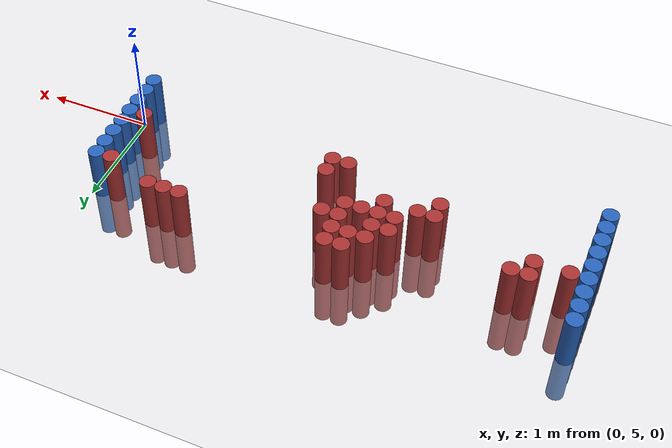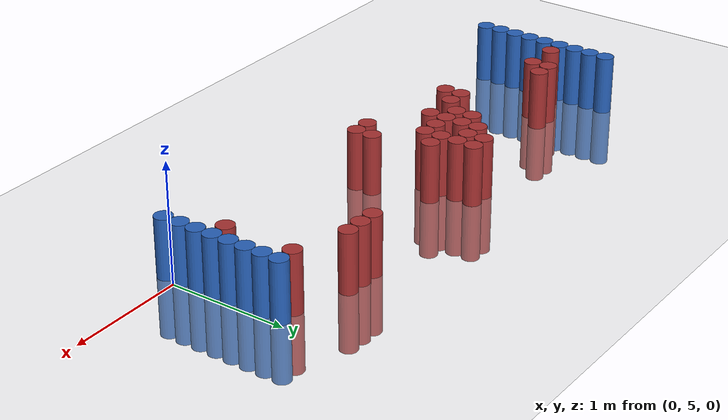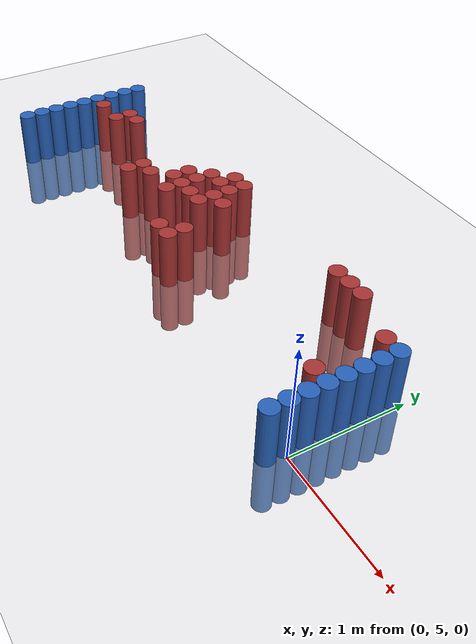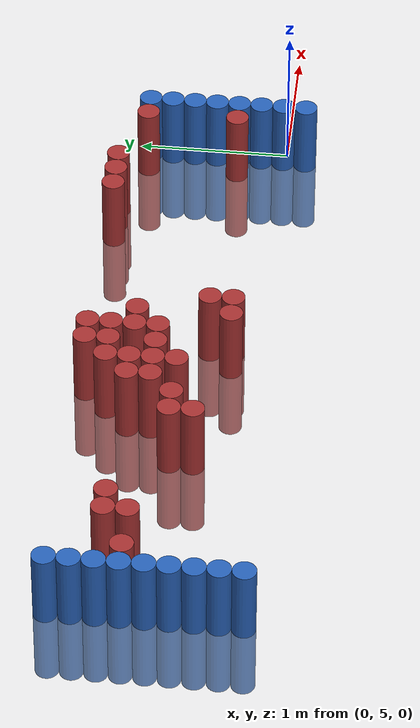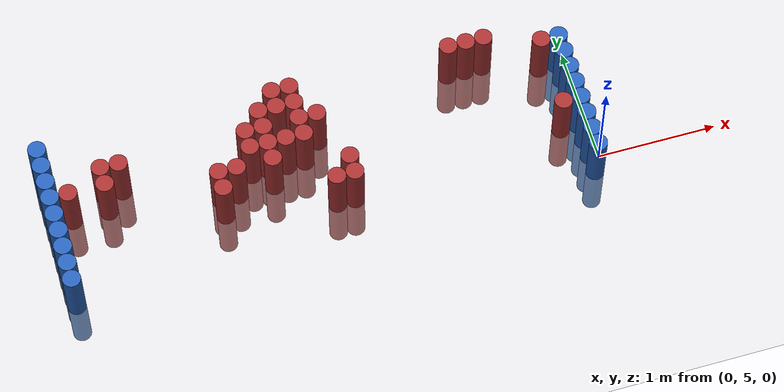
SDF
<sdf version="1.6">
 <world name="default">
  <model name="ground_plane">
   <static>1</static>
   <link name="link">
    <collision name="collision">
     <geometry><plane><normal>0 0 1</normal><size>100 100</size></plane></geometry>
     <surface><friction><ode><mu>100</mu><mu2>50</mu2></ode></friction></surface>
    </collision>
    <visual name="visual">
     <cast_shadows>0</cast_shadows>
     <geometry><plane><normal>0 0 1</normal><size>100 100</size></plane></geometry>
     <material>
      <script><uri>file://media/materials/scripts/gazebo.material</uri><name>Gazebo/Grey</name></script>
     </material>
    </visual>
   </link>
  </model>
  <model name="unit_cylinder_92">
   <static>1</static>
   <pose>-0.075000 4.875000 0.000000 0.000000 0.000000 0.000000</pose>
   <link name="link">
    <inertial>
     <mass>1</mass>
     <inertia><ixx>0.145833</ixx><ixy>0</ixy><ixz>0</ixz><iyy>0.145833</iyy><iyz>0</iyz><izz>0.125</izz></inertia>
    </inertial>
    <collision name="collision">
     <geometry><cylinder><radius>0.075000</radius><length>1</length></cylinder></geometry>
    </collision>
    <visual name="visual">
     <geometry><cylinder><radius>0.075000</radius><length>1</length></cylinder></geometry>
     <material>
      <ambient>0.152000 0.379000 0.720000 1</ambient>
      <diffuse>0.152000 0.379000 0.720000 1</diffuse>
     </material>
     <material>
      <script><name>Gazebo/Grey</name><uri>file://media/materials/scripts/gazebo.material</uri></script>
     </material>
    </visual>
   </link>
  </model>
  <model name="unit_cylinder_93">
   <static>1</static>
   <pose>-4.425000 4.875000 0.000000 0.000000 0.000000 0.000000</pose>
   <link name="link">
    <inertial>
     <mass>1</mass>
     <inertia><ixx>0.145833</ixx><ixy>0</ixy><ixz>0</ixz><iyy>0.145833</iyy><iyz>0</iyz><izz>0.125</izz></inertia>
    </inertial>
    <collision name="collision">
     <geometry><cylinder><radius>0.075000</radius><length>1</length></cylinder></geometry>
    </collision>
    <visual name="visual">
     <geometry><cylinder><radius>0.075000</radius><length>1</length></cylinder></geometry>
     <material>
      <ambient>0.152000 0.379000 0.720000 1</ambient>
      <diffuse>0.152000 0.379000 0.720000 1</diffuse>
     </material>
     <material>
      <script><name>Gazebo/Grey</name><uri>file://media/materials/scripts/gazebo.material</uri></script>
     </material>
    </visual>
   </link>
  </model>
  <model name="unit_cylinder_94">
   <static>1</static>
   <pose>-0.075000 5.025000 0.000000 0.000000 0.000000 0.000000</pose>
   <link name="link">
    <inertial>
     <mass>1</mass>
     <inertia><ixx>0.145833</ixx><ixy>0</ixy><ixz>0</ixz><iyy>0.145833</iyy><iyz>0</iyz><izz>0.125</izz></inertia>
    </inertial>
    <collision name="collision">
     <geometry><cylinder><radius>0.075000</radius><length>1</length></cylinder></geometry>
    </collision>
    <visual name="visual">
     <geometry><cylinder><radius>0.075000</radius><length>1</length></cylinder></geometry>
     <material>
      <ambient>0.152000 0.379000 0.720000 1</ambient>
      <diffuse>0.152000 0.379000 0.720000 1</diffuse>
     </material>
     <material>
      <script><name>Gazebo/Grey</name><uri>file://media/materials/scripts/gazebo.material</uri></script>
     </material>
    </visual>
   </link>
  </model>
  <model name="unit_cylinder_95">
   <static>1</static>
   <pose>-4.425000 5.025000 0.000000 0.000000 0.000000 0.000000</pose>
   <link name="link">
    <inertial>
     <mass>1</mass>
     <inertia><ixx>0.145833</ixx><ixy>0</ixy><ixz>0</ixz><iyy>0.145833</iyy><iyz>0</iyz><izz>0.125</izz></inertia>
    </inertial>
    <collision name="collision">
     <geometry><cylinder><radius>0.075000</radius><length>1</length></cylinder></geometry>
    </collision>
    <visual name="visual">
     <geometry><cylinder><radius>0.075000</radius><length>1</length></cylinder></geometry>
     <material>
      <ambient>0.152000 0.379000 0.720000 1</ambient>
      <diffuse>0.152000 0.379000 0.720000 1</diffuse>
     </material>
     <material>
      <script><name>Gazebo/Grey</name><uri>file://media/materials/scripts/gazebo.material</uri></script>
     </material>
    </visual>
   </link>
  </model>
  <model name="unit_cylinder_96">
   <static>1</static>
   <pose>-4.425000 5.175000 0.000000 0.000000 0.000000 0.000000</pose>
   <link name="link">
    <inertial>
     <mass>1</mass>
     <inertia><ixx>0.145833</ixx><ixy>0</ixy><ixz>0</ixz><iyy>0.145833</iyy><iyz>0</iyz><izz>0.125</izz></inertia>
    </inertial>
    <collision name="collision">
     <geometry><cylinder><radius>0.075000</radius><length>1</length></cylinder></geometry>
    </collision>
    <visual name="visual">
     <geometry><cylinder><radius>0.075000</radius><length>1</length></cylinder></geometry>
     <material>
      <ambient>0.152000 0.379000 0.720000 1</ambient>
      <diffuse>0.152000 0.379000 0.720000 1</diffuse>
     </material>
     <material>
      <script><name>Gazebo/Grey</name><uri>file://media/materials/scripts/gazebo.material</uri></script>
     </material>
    </visual>
   </link>
  </model>
  <model name="unit_cylinder_97">
   <static>1</static>
   <pose>-4.425000 5.325000 0.000000 0.000000 0.000000 0.000000</pose>
   <link name="link">
    <inertial>
     <mass>1</mass>
     <inertia><ixx>0.145833</ixx><ixy>0</ixy><ixz>0</ixz><iyy>0.145833</iyy><iyz>0</iyz><izz>0.125</izz></inertia>
    </inertial>
    <collision name="collision">
     <geometry><cylinder><radius>0.075000</radius><length>1</length></cylinder></geometry>
    </collision>
    <visual name="visual">
     <geometry><cylinder><radius>0.075000</radius><length>1</length></cylinder></geometry>
     <material>
      <ambient>0.152000 0.379000 0.720000 1</ambient>
      <diffuse>0.152000 0.379000 0.720000 1</diffuse>
     </material>
     <material>
      <script><name>Gazebo/Grey</name><uri>file://media/materials/scripts/gazebo.material</uri></script>
     </material>
    </visual>
   </link>
  </model>
  <model name="unit_cylinder_98">
   <static>1</static>
   <pose>-4.425000 5.475000 0.000000 0.000000 0.000000 0.000000</pose>
   <link name="link">
    <inertial>
     <mass>1</mass>
     <inertia><ixx>0.145833</ixx><ixy>0</ixy><ixz>0</ixz><iyy>0.145833</iyy><iyz>0</iyz><izz>0.125</izz></inertia>
    </inertial>
    <collision name="collision">
     <geometry><cylinder><radius>0.075000</radius><length>1</length></cylinder></geometry>
    </collision>
    <visual name="visual">
     <geometry><cylinder><radius>0.075000</radius><length>1</length></cylinder></geometry>
     <material>
      <ambient>0.152000 0.379000 0.720000 1</ambient>
      <diffuse>0.152000 0.379000 0.720000 1</diffuse>
     </material>
     <material>
      <script><name>Gazebo/Grey</name><uri>file://media/materials/scripts/gazebo.material</uri></script>
     </material>
    </visual>
   </link>
  </model>
  <model name="unit_cylinder_99">
   <static>1</static>
   <pose>-4.425000 5.625000 0.000000 0.000000 0.000000 0.000000</pose>
   <link name="link">
    <inertial>
     <mass>1</mass>
     <inertia><ixx>0.145833</ixx><ixy>0</ixy><ixz>0</ixz><iyy>0.145833</iyy><iyz>0</iyz><izz>0.125</izz></inertia>
    </inertial>
    <collision name="collision">
     <geometry><cylinder><radius>0.075000</radius><length>1</length></cylinder></geometry>
    </collision>
    <visual name="visual">
     <geometry><cylinder><radius>0.075000</radius><length>1</length></cylinder></geometry>
     <material>
      <ambient>0.152000 0.379000 0.720000 1</ambient>
      <diffuse>0.152000 0.379000 0.720000 1</diffuse>
     </material>
     <material>
      <script><name>Gazebo/Grey</name><uri>file://media/materials/scripts/gazebo.material</uri></script>
     </material>
    </visual>
   </link>
  </model>
  <model name="unit_cylinder_100">
   <static>1</static>
   <pose>-4.425000 5.775000 0.000000 0.000000 0.000000 0.000000</pose>
   <link name="link">
    <inertial>
     <mass>1</mass>
     <inertia><ixx>0.145833</ixx><ixy>0</ixy><ixz>0</ixz><iyy>0.145833</iyy><iyz>0</iyz><izz>0.125</izz></inertia>
    </inertial>
    <collision name="collision">
     <geometry><cylinder><radius>0.075000</radius><length>1</length></cylinder></geometry>
    </collision>
    <visual name="visual">
     <geometry><cylinder><radius>0.075000</radius><length>1</length></cylinder></geometry>
     <material>
      <ambient>0.152000 0.379000 0.720000 1</ambient>
      <diffuse>0.152000 0.379000 0.720000 1</diffuse>
     </material>
     <material>
      <script><name>Gazebo/Grey</name><uri>file://media/materials/scripts/gazebo.material</uri></script>
     </material>
    </visual>
   </link>
  </model>
  <model name="unit_cylinder_101">
   <static>1</static>
   <pose>-4.425000 5.925000 0.000000 0.000000 0.000000 0.000000</pose>
   <link name="link">
    <inertial>
     <mass>1</mass>
     <inertia><ixx>0.145833</ixx><ixy>0</ixy><ixz>0</ixz><iyy>0.145833</iyy><iyz>0</iyz><izz>0.125</izz></inertia>
    </inertial>
    <collision name="collision">
     <geometry><cylinder><radius>0.075000</radius><length>1</length></cylinder></geometry>
    </collision>
    <visual name="visual">
     <geometry><cylinder><radius>0.075000</radius><length>1</length></cylinder></geometry>
     <material>
      <ambient>0.152000 0.379000 0.720000 1</ambient>
      <diffuse>0.152000 0.379000 0.720000 1</diffuse>
     </material>
     <material>
      <script><name>Gazebo/Grey</name><uri>file://media/materials/scripts/gazebo.material</uri></script>
     </material>
    </visual>
   </link>
  </model>
  <model name="unit_cylinder_102">
   <static>1</static>
   <pose>-4.425000 6.075000 0.000000 0.000000 0.000000 0.000000</pose>
   <link name="link">
    <inertial>
     <mass>1</mass>
     <inertia><ixx>0.145833</ixx><ixy>0</ixy><ixz>0</ixz><iyy>0.145833</iyy><iyz>0</iyz><izz>0.125</izz></inertia>
    </inertial>
    <collision name="collision">
     <geometry><cylinder><radius>0.075000</radius><length>1</length></cylinder></geometry>
    </collision>
    <visual name="visual">
     <geometry><cylinder><radius>0.075000</radius><length>1</length></cylinder></geometry>
     <material>
      <ambient>0.152000 0.379000 0.720000 1</ambient>
      <diffuse>0.152000 0.379000 0.720000 1</diffuse>
     </material>
     <material>
      <script><name>Gazebo/Grey</name><uri>file://media/materials/scripts/gazebo.material</uri></script>
     </material>
    </visual>
   </link>
  </model>
  <model name="unit_cylinder_126">
   <static>1</static>
   <pose>-4.275000 5.625000 0.000000 0.000000 0.000000 0.000000</pose>
   <link name="link">
    <inertial>
     <mass>1</mass>
     <inertia><ixx>0.145833</ixx><ixy>0</ixy><ixz>0</ixz><iyy>0.145833</iyy><iyz>0</iyz><izz>0.125</izz></inertia>
    </inertial>
    <collision name="collision">
     <geometry><cylinder><radius>0.075000</radius><length>1</length></cylinder></geometry>
    </collision>
    <visual name="visual">
     <geometry><cylinder><radius>0.075000</radius><length>1</length></cylinder></geometry>
     <material>
      <ambient>0.648000 0.192000 0.192000 1</ambient>
      <diffuse>0.648000 0.192000 0.192000 1</diffuse>
     </material>
     <material>
      <script><name>Gazebo/Grey</name><uri>file://media/materials/scripts/gazebo.material</uri></script>
     </material>
    </visual>
   </link>
  </model>
  <model name="unit_cylinder_144">
   <static>1</static>
   <pose>-3.975000 5.625000 0.000000 0.000000 0.000000 0.000000</pose>
   <link name="link">
    <inertial>
     <mass>1</mass>
     <inertia><ixx>0.145833</ixx><ixy>0</ixy><ixz>0</ixz><iyy>0.145833</iyy><iyz>0</iyz><izz>0.125</izz></inertia>
    </inertial>
    <collision name="collision">
     <geometry><cylinder><radius>0.075000</radius><length>1</length></cylinder></geometry>
    </collision>
    <visual name="visual">
     <geometry><cylinder><radius>0.075000</radius><length>1</length></cylinder></geometry>
     <material>
      <ambient>0.648000 0.192000 0.192000 1</ambient>
      <diffuse>0.648000 0.192000 0.192000 1</diffuse>
     </material>
     <material>
      <script><name>Gazebo/Grey</name><uri>file://media/materials/scripts/gazebo.material</uri></script>
     </material>
    </visual>
   </link>
  </model>
  <model name="unit_cylinder_145">
   <static>1</static>
   <pose>-3.975000 5.775000 0.000000 0.000000 0.000000 0.000000</pose>
   <link name="link">
    <inertial>
     <mass>1</mass>
     <inertia><ixx>0.145833</ixx><ixy>0</ixy><ixz>0</ixz><iyy>0.145833</iyy><iyz>0</iyz><izz>0.125</izz></inertia>
    </inertial>
    <collision name="collision">
     <geometry><cylinder><radius>0.075000</radius><length>1</length></cylinder></geometry>
    </collision>
    <visual name="visual">
     <geometry><cylinder><radius>0.075000</radius><length>1</length></cylinder></geometry>
     <material>
      <ambient>0.648000 0.192000 0.192000 1</ambient>
      <diffuse>0.648000 0.192000 0.192000 1</diffuse>
     </material>
     <material>
      <script><name>Gazebo/Grey</name><uri>file://media/materials/scripts/gazebo.material</uri></script>
     </material>
    </visual>
   </link>
  </model>
  <model name="unit_cylinder_150">
   <static>1</static>
   <pose>-3.825000 5.775000 0.000000 0.000000 0.000000 0.000000</pose>
   <link name="link">
    <inertial>
     <mass>1</mass>
     <inertia><ixx>0.145833</ixx><ixy>0</ixy><ixz>0</ixz><iyy>0.145833</iyy><iyz>0</iyz><izz>0.125</izz></inertia>
    </inertial>
    <collision name="collision">
     <geometry><cylinder><radius>0.075000</radius><length>1</length></cylinder></geometry>
    </collision>
    <visual name="visual">
     <geometry><cylinder><radius>0.075000</radius><length>1</length></cylinder></geometry>
     <material>
      <ambient>0.648000 0.192000 0.192000 1</ambient>
      <diffuse>0.648000 0.192000 0.192000 1</diffuse>
     </material>
     <material>
      <script><name>Gazebo/Grey</name><uri>file://media/materials/scripts/gazebo.material</uri></script>
     </material>
    </visual>
   </link>
  </model>
  <model name="unit_cylinder_159">
   <static>1</static>
   <pose>-3.075000 5.325000 0.000000 0.000000 0.000000 0.000000</pose>
   <link name="link">
    <inertial>
     <mass>1</mass>
     <inertia><ixx>0.145833</ixx><ixy>0</ixy><ixz>0</ixz><iyy>0.145833</iyy><iyz>0</iyz><izz>0.125</izz></inertia>
    </inertial>
    <collision name="collision">
     <geometry><cylinder><radius>0.075000</radius><length>1</length></cylinder></geometry>
    </collision>
    <visual name="visual">
     <geometry><cylinder><radius>0.075000</radius><length>1</length></cylinder></geometry>
     <material>
      <ambient>0.648000 0.192000 0.192000 1</ambient>
      <diffuse>0.648000 0.192000 0.192000 1</diffuse>
     </material>
     <material>
      <script><name>Gazebo/Grey</name><uri>file://media/materials/scripts/gazebo.material</uri></script>
     </material>
    </visual>
   </link>
  </model>
  <model name="unit_cylinder_160">
   <static>1</static>
   <pose>-3.075000 5.475000 0.000000 0.000000 0.000000 0.000000</pose>
   <link name="link">
    <inertial>
     <mass>1</mass>
     <inertia><ixx>0.145833</ixx><ixy>0</ixy><ixz>0</ixz><iyy>0.145833</iyy><iyz>0</iyz><izz>0.125</izz></inertia>
    </inertial>
    <collision name="collision">
     <geometry><cylinder><radius>0.075000</radius><length>1</length></cylinder></geometry>
    </collision>
    <visual name="visual">
     <geometry><cylinder><radius>0.075000</radius><length>1</length></cylinder></geometry>
     <material>
      <ambient>0.648000 0.192000 0.192000 1</ambient>
      <diffuse>0.648000 0.192000 0.192000 1</diffuse>
     </material>
     <material>
      <script><name>Gazebo/Grey</name><uri>file://media/materials/scripts/gazebo.material</uri></script>
     </material>
    </visual>
   </link>
  </model>
  <model name="unit_cylinder_161">
   <static>1</static>
   <pose>-2.925000 5.475000 0.000000 0.000000 0.000000 0.000000</pose>
   <link name="link">
    <inertial>
     <mass>1</mass>
     <inertia><ixx>0.145833</ixx><ixy>0</ixy><ixz>0</ixz><iyy>0.145833</iyy><iyz>0</iyz><izz>0.125</izz></inertia>
    </inertial>
    <collision name="collision">
     <geometry><cylinder><radius>0.075000</radius><length>1</length></cylinder></geometry>
    </collision>
    <visual name="visual">
     <geometry><cylinder><radius>0.075000</radius><length>1</length></cylinder></geometry>
     <material>
      <ambient>0.648000 0.192000 0.192000 1</ambient>
      <diffuse>0.648000 0.192000 0.192000 1</diffuse>
     </material>
     <material>
      <script><name>Gazebo/Grey</name><uri>file://media/materials/scripts/gazebo.material</uri></script>
     </material>
    </visual>
   </link>
  </model>
  <model name="unit_cylinder_164">
   <static>1</static>
   <pose>-2.775000 5.625000 0.000000 0.000000 0.000000 0.000000</pose>
   <link name="link">
    <inertial>
     <mass>1</mass>
     <inertia><ixx>0.145833</ixx><ixy>0</ixy><ixz>0</ixz><iyy>0.145833</iyy><iyz>0</iyz><izz>0.125</izz></inertia>
    </inertial>
    <collision name="collision">
     <geometry><cylinder><radius>0.075000</radius><length>1</length></cylinder></geometry>
    </collision>
    <visual name="visual">
     <geometry><cylinder><radius>0.075000</radius><length>1</length></cylinder></geometry>
     <material>
      <ambient>0.648000 0.192000 0.192000 1</ambient>
      <diffuse>0.648000 0.192000 0.192000 1</diffuse>
     </material>
     <material>
      <script><name>Gazebo/Grey</name><uri>file://media/materials/scripts/gazebo.material</uri></script>
     </material>
    </visual>
   </link>
  </model>
  <model name="unit_cylinder_165">
   <static>1</static>
   <pose>-2.775000 5.775000 0.000000 0.000000 0.000000 0.000000</pose>
   <link name="link">
    <inertial>
     <mass>1</mass>
     <inertia><ixx>0.145833</ixx><ixy>0</ixy><ixz>0</ixz><iyy>0.145833</iyy><iyz>0</iyz><izz>0.125</izz></inertia>
    </inertial>
    <collision name="collision">
     <geometry><cylinder><radius>0.075000</radius><length>1</length></cylinder></geometry>
    </collision>
    <visual name="visual">
     <geometry><cylinder><radius>0.075000</radius><length>1</length></cylinder></geometry>
     <material>
      <ambient>0.648000 0.192000 0.192000 1</ambient>
      <diffuse>0.648000 0.192000 0.192000 1</diffuse>
     </material>
     <material>
      <script><name>Gazebo/Grey</name><uri>file://media/materials/scripts/gazebo.material</uri></script>
     </material>
    </visual>
   </link>
  </model>
  <model name="unit_cylinder_168">
   <static>1</static>
   <pose>-2.625000 5.475000 0.000000 0.000000 0.000000 0.000000</pose>
   <link name="link">
    <inertial>
     <mass>1</mass>
     <inertia><ixx>0.145833</ixx><ixy>0</ixy><ixz>0</ixz><iyy>0.145833</iyy><iyz>0</iyz><izz>0.125</izz></inertia>
    </inertial>
    <collision name="collision">
     <geometry><cylinder><radius>0.075000</radius><length>1</length></cylinder></geometry>
    </collision>
    <visual name="visual">
     <geometry><cylinder><radius>0.075000</radius><length>1</length></cylinder></geometry>
     <material>
      <ambient>0.648000 0.192000 0.192000 1</ambient>
      <diffuse>0.648000 0.192000 0.192000 1</diffuse>
     </material>
     <material>
      <script><name>Gazebo/Grey</name><uri>file://media/materials/scripts/gazebo.material</uri></script>
     </material>
    </visual>
   </link>
  </model>
  <model name="unit_cylinder_169">
   <static>1</static>
   <pose>-2.625000 5.625000 0.000000 0.000000 0.000000 0.000000</pose>
   <link name="link">
    <inertial>
     <mass>1</mass>
     <inertia><ixx>0.145833</ixx><ixy>0</ixy><ixz>0</ixz><iyy>0.145833</iyy><iyz>0</iyz><izz>0.125</izz></inertia>
    </inertial>
    <collision name="collision">
     <geometry><cylinder><radius>0.075000</radius><length>1</length></cylinder></geometry>
    </collision>
    <visual name="visual">
     <geometry><cylinder><radius>0.075000</radius><length>1</length></cylinder></geometry>
     <material>
      <ambient>0.648000 0.192000 0.192000 1</ambient>
      <diffuse>0.648000 0.192000 0.192000 1</diffuse>
     </material>
     <material>
      <script><name>Gazebo/Grey</name><uri>file://media/materials/scripts/gazebo.material</uri></script>
     </material>
    </visual>
   </link>
  </model>
  <model name="unit_cylinder_170">
   <static>1</static>
   <pose>-2.625000 5.775000 0.000000 0.000000 0.000000 0.000000</pose>
   <link name="link">
    <inertial>
     <mass>1</mass>
     <inertia><ixx>0.145833</ixx><ixy>0</ixy><ixz>0</ixz><iyy>0.145833</iyy><iyz>0</iyz><izz>0.125</izz></inertia>
    </inertial>
    <collision name="collision">
     <geometry><cylinder><radius>0.075000</radius><length>1</length></cylinder></geometry>
    </collision>
    <visual name="visual">
     <geometry><cylinder><radius>0.075000</radius><length>1</length></cylinder></geometry>
     <material>
      <ambient>0.648000 0.192000 0.192000 1</ambient>
      <diffuse>0.648000 0.192000 0.192000 1</diffuse>
     </material>
     <material>
      <script><name>Gazebo/Grey</name><uri>file://media/materials/scripts/gazebo.material</uri></script>
     </material>
    </visual>
   </link>
  </model>
  <model name="unit_cylinder_171">
   <static>1</static>
   <pose>-2.625000 5.925000 0.000000 0.000000 0.000000 0.000000</pose>
   <link name="link">
    <inertial>
     <mass>1</mass>
     <inertia><ixx>0.145833</ixx><ixy>0</ixy><ixz>0</ixz><iyy>0.145833</iyy><iyz>0</iyz><izz>0.125</izz></inertia>
    </inertial>
    <collision name="collision">
     <geometry><cylinder><radius>0.075000</radius><length>1</length></cylinder></geometry>
    </collision>
    <visual name="visual">
     <geometry><cylinder><radius>0.075000</radius><length>1</length></cylinder></geometry>
     <material>
      <ambient>0.648000 0.192000 0.192000 1</ambient>
      <diffuse>0.648000 0.192000 0.192000 1</diffuse>
     </material>
     <material>
      <script><name>Gazebo/Grey</name><uri>file://media/materials/scripts/gazebo.material</uri></script>
     </material>
    </visual>
   </link>
  </model>
  <model name="unit_cylinder_173">
   <static>1</static>
   <pose>-2.475000 5.625000 0.000000 0.000000 0.000000 0.000000</pose>
   <link name="link">
    <inertial>
     <mass>1</mass>
     <inertia><ixx>0.145833</ixx><ixy>0</ixy><ixz>0</ixz><iyy>0.145833</iyy><iyz>0</iyz><izz>0.125</izz></inertia>
    </inertial>
    <collision name="collision">
     <geometry><cylinder><radius>0.075000</radius><length>1</length></cylinder></geometry>
    </collision>
    <visual name="visual">
     <geometry><cylinder><radius>0.075000</radius><length>1</length></cylinder></geometry>
     <material>
      <ambient>0.648000 0.192000 0.192000 1</ambient>
      <diffuse>0.648000 0.192000 0.192000 1</diffuse>
     </material>
     <material>
      <script><name>Gazebo/Grey</name><uri>file://media/materials/scripts/gazebo.material</uri></script>
     </material>
    </visual>
   </link>
  </model>
  <model name="unit_cylinder_174">
   <static>1</static>
   <pose>-2.475000 5.925000 0.000000 0.000000 0.000000 0.000000</pose>
   <link name="link">
    <inertial>
     <mass>1</mass>
     <inertia><ixx>0.145833</ixx><ixy>0</ixy><ixz>0</ixz><iyy>0.145833</iyy><iyz>0</iyz><izz>0.125</izz></inertia>
    </inertial>
    <collision name="collision">
     <geometry><cylinder><radius>0.075000</radius><length>1</length></cylinder></geometry>
    </collision>
    <visual name="visual">
     <geometry><cylinder><radius>0.075000</radius><length>1</length></cylinder></geometry>
     <material>
      <ambient>0.648000 0.192000 0.192000 1</ambient>
      <diffuse>0.648000 0.192000 0.192000 1</diffuse>
     </material>
     <material>
      <script><name>Gazebo/Grey</name><uri>file://media/materials/scripts/gazebo.material</uri></script>
     </material>
    </visual>
   </link>
  </model>
  <model name="unit_cylinder_175">
   <static>1</static>
   <pose>-2.475000 6.075000 0.000000 0.000000 0.000000 0.000000</pose>
   <link name="link">
    <inertial>
     <mass>1</mass>
     <inertia><ixx>0.145833</ixx><ixy>0</ixy><ixz>0</ixz><iyy>0.145833</iyy><iyz>0</iyz><izz>0.125</izz></inertia>
    </inertial>
    <collision name="collision">
     <geometry><cylinder><radius>0.075000</radius><length>1</length></cylinder></geometry>
    </collision>
    <visual name="visual">
     <geometry><cylinder><radius>0.075000</radius><length>1</length></cylinder></geometry>
     <material>
      <ambient>0.648000 0.192000 0.192000 1</ambient>
      <diffuse>0.648000 0.192000 0.192000 1</diffuse>
     </material>
     <material>
      <script><name>Gazebo/Grey</name><uri>file://media/materials/scripts/gazebo.material</uri></script>
     </material>
    </visual>
   </link>
  </model>
  <model name="unit_cylinder_180">
   <static>1</static>
   <pose>-2.325000 5.625000 0.000000 0.000000 0.000000 0.000000</pose>
   <link name="link">
    <inertial>
     <mass>1</mass>
     <inertia><ixx>0.145833</ixx><ixy>0</ixy><ixz>0</ixz><iyy>0.145833</iyy><iyz>0</iyz><izz>0.125</izz></inertia>
    </inertial>
    <collision name="collision">
     <geometry><cylinder><radius>0.075000</radius><length>1</length></cylinder></geometry>
    </collision>
    <visual name="visual">
     <geometry><cylinder><radius>0.075000</radius><length>1</length></cylinder></geometry>
     <material>
      <ambient>0.648000 0.192000 0.192000 1</ambient>
      <diffuse>0.648000 0.192000 0.192000 1</diffuse>
     </material>
     <material>
      <script><name>Gazebo/Grey</name><uri>file://media/materials/scripts/gazebo.material</uri></script>
     </material>
    </visual>
   </link>
  </model>
  <model name="unit_cylinder_181">
   <static>1</static>
   <pose>-2.325000 5.775000 0.000000 0.000000 0.000000 0.000000</pose>
   <link name="link">
    <inertial>
     <mass>1</mass>
     <inertia><ixx>0.145833</ixx><ixy>0</ixy><ixz>0</ixz><iyy>0.145833</iyy><iyz>0</iyz><izz>0.125</izz></inertia>
    </inertial>
    <collision name="collision">
     <geometry><cylinder><radius>0.075000</radius><length>1</length></cylinder></geometry>
    </collision>
    <visual name="visual">
     <geometry><cylinder><radius>0.075000</radius><length>1</length></cylinder></geometry>
     <material>
      <ambient>0.648000 0.192000 0.192000 1</ambient>
      <diffuse>0.648000 0.192000 0.192000 1</diffuse>
     </material>
     <material>
      <script><name>Gazebo/Grey</name><uri>file://media/materials/scripts/gazebo.material</uri></script>
     </material>
    </visual>
   </link>
  </model>
  <model name="unit_cylinder_182">
   <static>1</static>
   <pose>-2.325000 5.925000 0.000000 0.000000 0.000000 0.000000</pose>
   <link name="link">
    <inertial>
     <mass>1</mass>
     <inertia><ixx>0.145833</ixx><ixy>0</ixy><ixz>0</ixz><iyy>0.145833</iyy><iyz>0</iyz><izz>0.125</izz></inertia>
    </inertial>
    <collision name="collision">
     <geometry><cylinder><radius>0.075000</radius><length>1</length></cylinder></geometry>
    </collision>
    <visual name="visual">
     <geometry><cylinder><radius>0.075000</radius><length>1</length></cylinder></geometry>
     <material>
      <ambient>0.648000 0.192000 0.192000 1</ambient>
      <diffuse>0.648000 0.192000 0.192000 1</diffuse>
     </material>
     <material>
      <script><name>Gazebo/Grey</name><uri>file://media/materials/scripts/gazebo.material</uri></script>
     </material>
    </visual>
   </link>
  </model>
  <model name="unit_cylinder_183">
   <static>1</static>
   <pose>-2.325000 6.075000 0.000000 0.000000 0.000000 0.000000</pose>
   <link name="link">
    <inertial>
     <mass>1</mass>
     <inertia><ixx>0.145833</ixx><ixy>0</ixy><ixz>0</ixz><iyy>0.145833</iyy><iyz>0</iyz><izz>0.125</izz></inertia>
    </inertial>
    <collision name="collision">
     <geometry><cylinder><radius>0.075000</radius><length>1</length></cylinder></geometry>
    </collision>
    <visual name="visual">
     <geometry><cylinder><radius>0.075000</radius><length>1</length></cylinder></geometry>
     <material>
      <ambient>0.648000 0.192000 0.192000 1</ambient>
      <diffuse>0.648000 0.192000 0.192000 1</diffuse>
     </material>
     <material>
      <script><name>Gazebo/Grey</name><uri>file://media/materials/scripts/gazebo.material</uri></script>
     </material>
    </visual>
   </link>
  </model>
  <model name="unit_cylinder_185">
   <static>1</static>
   <pose>-2.175000 5.175000 0.000000 0.000000 0.000000 0.000000</pose>
   <link name="link">
    <inertial>
     <mass>1</mass>
     <inertia><ixx>0.145833</ixx><ixy>0</ixy><ixz>0</ixz><iyy>0.145833</iyy><iyz>0</iyz><izz>0.125</izz></inertia>
    </inertial>
    <collision name="collision">
     <geometry><cylinder><radius>0.075000</radius><length>1</length></cylinder></geometry>
    </collision>
    <visual name="visual">
     <geometry><cylinder><radius>0.075000</radius><length>1</length></cylinder></geometry>
     <material>
      <ambient>0.648000 0.192000 0.192000 1</ambient>
      <diffuse>0.648000 0.192000 0.192000 1</diffuse>
     </material>
     <material>
      <script><name>Gazebo/Grey</name><uri>file://media/materials/scripts/gazebo.material</uri></script>
     </material>
    </visual>
   </link>
  </model>
  <model name="unit_cylinder_186">
   <static>1</static>
   <pose>-2.175000 5.775000 0.000000 0.000000 0.000000 0.000000</pose>
   <link name="link">
    <inertial>
     <mass>1</mass>
     <inertia><ixx>0.145833</ixx><ixy>0</ixy><ixz>0</ixz><iyy>0.145833</iyy><iyz>0</iyz><izz>0.125</izz></inertia>
    </inertial>
    <collision name="collision">
     <geometry><cylinder><radius>0.075000</radius><length>1</length></cylinder></geometry>
    </collision>
    <visual name="visual">
     <geometry><cylinder><radius>0.075000</radius><length>1</length></cylinder></geometry>
     <material>
      <ambient>0.648000 0.192000 0.192000 1</ambient>
      <diffuse>0.648000 0.192000 0.192000 1</diffuse>
     </material>
     <material>
      <script><name>Gazebo/Grey</name><uri>file://media/materials/scripts/gazebo.material</uri></script>
     </material>
    </visual>
   </link>
  </model>
  <model name="unit_cylinder_187">
   <static>1</static>
   <pose>-2.025000 5.175000 0.000000 0.000000 0.000000 0.000000</pose>
   <link name="link">
    <inertial>
     <mass>1</mass>
     <inertia><ixx>0.145833</ixx><ixy>0</ixy><ixz>0</ixz><iyy>0.145833</iyy><iyz>0</iyz><izz>0.125</izz></inertia>
    </inertial>
    <collision name="collision">
     <geometry><cylinder><radius>0.075000</radius><length>1</length></cylinder></geometry>
    </collision>
    <visual name="visual">
     <geometry><cylinder><radius>0.075000</radius><length>1</length></cylinder></geometry>
     <material>
      <ambient>0.648000 0.192000 0.192000 1</ambient>
      <diffuse>0.648000 0.192000 0.192000 1</diffuse>
     </material>
     <material>
      <script><name>Gazebo/Grey</name><uri>file://media/materials/scripts/gazebo.material</uri></script>
     </material>
    </visual>
   </link>
  </model>
  <model name="unit_cylinder_188">
   <static>1</static>
   <pose>-2.025000 5.325000 0.000000 0.000000 0.000000 0.000000</pose>
   <link name="link">
    <inertial>
     <mass>1</mass>
     <inertia><ixx>0.145833</ixx><ixy>0</ixy><ixz>0</ixz><iyy>0.145833</iyy><iyz>0</iyz><izz>0.125</izz></inertia>
    </inertial>
    <collision name="collision">
     <geometry><cylinder><radius>0.075000</radius><length>1</length></cylinder></geometry>
    </collision>
    <visual name="visual">
     <geometry><cylinder><radius>0.075000</radius><length>1</length></cylinder></geometry>
     <material>
      <ambient>0.648000 0.192000 0.192000 1</ambient>
      <diffuse>0.648000 0.192000 0.192000 1</diffuse>
     </material>
     <material>
      <script><name>Gazebo/Grey</name><uri>file://media/materials/scripts/gazebo.material</uri></script>
     </material>
    </visual>
   </link>
  </model>
  <model name="unit_cylinder_197">
   <static>1</static>
   <pose>-0.975000 6.075000 0.000000 0.000000 0.000000 0.000000</pose>
   <link name="link">
    <inertial>
     <mass>1</mass>
     <inertia><ixx>0.145833</ixx><ixy>0</ixy><ixz>0</ixz><iyy>0.145833</iyy><iyz>0</iyz><izz>0.125</izz></inertia>
    </inertial>
    <collision name="collision">
     <geometry><cylinder><radius>0.075000</radius><length>1</length></cylinder></geometry>
    </collision>
    <visual name="visual">
     <geometry><cylinder><radius>0.075000</radius><length>1</length></cylinder></geometry>
     <material>
      <ambient>0.648000 0.192000 0.192000 1</ambient>
      <diffuse>0.648000 0.192000 0.192000 1</diffuse>
     </material>
     <material>
      <script><name>Gazebo/Grey</name><uri>file://media/materials/scripts/gazebo.material</uri></script>
     </material>
    </visual>
   </link>
  </model>
  <model name="unit_cylinder_202">
   <static>1</static>
   <pose>-0.825000 6.075000 0.000000 0.000000 0.000000 0.000000</pose>
   <link name="link">
    <inertial>
     <mass>1</mass>
     <inertia><ixx>0.145833</ixx><ixy>0</ixy><ixz>0</ixz><iyy>0.145833</iyy><iyz>0</iyz><izz>0.125</izz></inertia>
    </inertial>
    <collision name="collision">
     <geometry><cylinder><radius>0.075000</radius><length>1</length></cylinder></geometry>
    </collision>
    <visual name="visual">
     <geometry><cylinder><radius>0.075000</radius><length>1</length></cylinder></geometry>
     <material>
      <ambient>0.648000 0.192000 0.192000 1</ambient>
      <diffuse>0.648000 0.192000 0.192000 1</diffuse>
     </material>
     <material>
      <script><name>Gazebo/Grey</name><uri>file://media/materials/scripts/gazebo.material</uri></script>
     </material>
    </visual>
   </link>
  </model>
  <model name="unit_cylinder_210">
   <static>1</static>
   <pose>-0.675000 6.075000 0.000000 0.000000 0.000000 0.000000</pose>
   <link name="link">
    <inertial>
     <mass>1</mass>
     <inertia><ixx>0.145833</ixx><ixy>0</ixy><ixz>0</ixz><iyy>0.145833</iyy><iyz>0</iyz><izz>0.125</izz></inertia>
    </inertial>
    <collision name="collision">
     <geometry><cylinder><radius>0.075000</radius><length>1</length></cylinder></geometry>
    </collision>
    <visual name="visual">
     <geometry><cylinder><radius>0.075000</radius><length>1</length></cylinder></geometry>
     <material>
      <ambient>0.648000 0.192000 0.192000 1</ambient>
      <diffuse>0.648000 0.192000 0.192000 1</diffuse>
     </material>
     <material>
      <script><name>Gazebo/Grey</name><uri>file://media/materials/scripts/gazebo.material</uri></script>
     </material>
    </visual>
   </link>
  </model>
  <model name="unit_cylinder_229">
   <static>1</static>
   <pose>-0.225000 5.325000 0.000000 0.000000 0.000000 0.000000</pose>
   <link name="link">
    <inertial>
     <mass>1</mass>
     <inertia><ixx>0.145833</ixx><ixy>0</ixy><ixz>0</ixz><iyy>0.145833</iyy><iyz>0</iyz><izz>0.125</izz></inertia>
    </inertial>
    <collision name="collision">
     <geometry><cylinder><radius>0.075000</radius><length>1</length></cylinder></geometry>
    </collision>
    <visual name="visual">
     <geometry><cylinder><radius>0.075000</radius><length>1</length></cylinder></geometry>
     <material>
      <ambient>0.648000 0.192000 0.192000 1</ambient>
      <diffuse>0.648000 0.192000 0.192000 1</diffuse>
     </material>
     <material>
      <script><name>Gazebo/Grey</name><uri>file://media/materials/scripts/gazebo.material</uri></script>
     </material>
    </visual>
   </link>
  </model>
  <model name="unit_cylinder_230">
   <static>1</static>
   <pose>-0.225000 5.925000 0.000000 0.000000 0.000000 0.000000</pose>
   <link name="link">
    <inertial>
     <mass>1</mass>
     <inertia><ixx>0.145833</ixx><ixy>0</ixy><ixz>0</ixz><iyy>0.145833</iyy><iyz>0</iyz><izz>0.125</izz></inertia>
    </inertial>
    <collision name="collision">
     <geometry><cylinder><radius>0.075000</radius><length>1</length></cylinder></geometry>
    </collision>
    <visual name="visual">
     <geometry><cylinder><radius>0.075000</radius><length>1</length></cylinder></geometry>
     <material>
      <ambient>0.648000 0.192000 0.192000 1</ambient>
      <diffuse>0.648000 0.192000 0.192000 1</diffuse>
     </material>
     <material>
      <script><name>Gazebo/Grey</name><uri>file://media/materials/scripts/gazebo.material</uri></script>
     </material>
    </visual>
   </link>
  </model>
  <model name="unit_cylinder_246">
   <static>1</static>
   <pose>-0.075000 5.175000 0.000000 0.000000 0.000000 0.000000</pose>
   <link name="link">
    <inertial>
     <mass>1</mass>
     <inertia><ixx>0.145833</ixx><ixy>0</ixy><ixz>0</ixz><iyy>0.145833</iyy><iyz>0</iyz><izz>0.125</izz></inertia>
    </inertial>
    <collision name="collision">
     <geometry><cylinder><radius>0.075000</radius><length>1</length></cylinder></geometry>
    </collision>
    <visual name="visual">
     <geometry><cylinder><radius>0.075000</radius><length>1</length></cylinder></geometry>
     <material>
      <ambient>0.152000 0.379000 0.720000 1</ambient>
      <diffuse>0.152000 0.379000 0.720000 1</diffuse>
     </material>
     <material>
      <script><name>Gazebo/Grey</name><uri>file://media/materials/scripts/gazebo.material</uri></script>
     </material>
    </visual>
   </link>
  </model>
  <model name="unit_cylinder_247">
   <static>1</static>
   <pose>-0.075000 5.325000 0.000000 0.000000 0.000000 0.000000</pose>
   <link name="link">
    <inertial>
     <mass>1</mass>
     <inertia><ixx>0.145833</ixx><ixy>0</ixy><ixz>0</ixz><iyy>0.145833</iyy><iyz>0</iyz><izz>0.125</izz></inertia>
    </inertial>
    <collision name="collision">
     <geometry><cylinder><radius>0.075000</radius><length>1</length></cylinder></geometry>
    </collision>
    <visual name="visual">
     <geometry><cylinder><radius>0.075000</radius><length>1</length></cylinder></geometry>
     <material>
      <ambient>0.152000 0.379000 0.720000 1</ambient>
      <diffuse>0.152000 0.379000 0.720000 1</diffuse>
     </material>
     <material>
      <script><name>Gazebo/Grey</name><uri>file://media/materials/scripts/gazebo.material</uri></script>
     </material>
    </visual>
   </link>
  </model>
  <model name="unit_cylinder_248">
   <static>1</static>
   <pose>-0.075000 5.475000 0.000000 0.000000 0.000000 0.000000</pose>
   <link name="link">
    <inertial>
     <mass>1</mass>
     <inertia><ixx>0.145833</ixx><ixy>0</ixy><ixz>0</ixz><iyy>0.145833</iyy><iyz>0</iyz><izz>0.125</izz></inertia>
    </inertial>
    <collision name="collision">
     <geometry><cylinder><radius>0.075000</radius><length>1</length></cylinder></geometry>
    </collision>
    <visual name="visual">
     <geometry><cylinder><radius>0.075000</radius><length>1</length></cylinder></geometry>
     <material>
      <ambient>0.152000 0.379000 0.720000 1</ambient>
      <diffuse>0.152000 0.379000 0.720000 1</diffuse>
     </material>
     <material>
      <script><name>Gazebo/Grey</name><uri>file://media/materials/scripts/gazebo.material</uri></script>
     </material>
    </visual>
   </link>
  </model>
  <model name="unit_cylinder_249">
   <static>1</static>
   <pose>-0.075000 5.625000 0.000000 0.000000 0.000000 0.000000</pose>
   <link name="link">
    <inertial>
     <mass>1</mass>
     <inertia><ixx>0.145833</ixx><ixy>0</ixy><ixz>0</ixz><iyy>0.145833</iyy><iyz>0</iyz><izz>0.125</izz></inertia>
    </inertial>
    <collision name="collision">
     <geometry><cylinder><radius>0.075000</radius><length>1</length></cylinder></geometry>
    </collision>
    <visual name="visual">
     <geometry><cylinder><radius>0.075000</radius><length>1</length></cylinder></geometry>
     <material>
      <ambient>0.152000 0.379000 0.720000 1</ambient>
      <diffuse>0.152000 0.379000 0.720000 1</diffuse>
     </material>
     <material>
      <script><name>Gazebo/Grey</name><uri>file://media/materials/scripts/gazebo.material</uri></script>
     </material>
    </visual>
   </link>
  </model>
  <model name="unit_cylinder_250">
   <static>1</static>
   <pose>-0.075000 5.775000 0.000000 0.000000 0.000000 0.000000</pose>
   <link name="link">
    <inertial>
     <mass>1</mass>
     <inertia><ixx>0.145833</ixx><ixy>0</ixy><ixz>0</ixz><iyy>0.145833</iyy><iyz>0</iyz><izz>0.125</izz></inertia>
    </inertial>
    <collision name="collision">
     <geometry><cylinder><radius>0.075000</radius><length>1</length></cylinder></geometry>
    </collision>
    <visual name="visual">
     <geometry><cylinder><radius>0.075000</radius><length>1</length></cylinder></geometry>
     <material>
      <ambient>0.152000 0.379000 0.720000 1</ambient>
      <diffuse>0.152000 0.379000 0.720000 1</diffuse>
     </material>
     <material>
      <script><name>Gazebo/Grey</name><uri>file://media/materials/scripts/gazebo.material</uri></script>
     </material>
    </visual>
   </link>
  </model>
  <model name="unit_cylinder_251">
   <static>1</static>
   <pose>-0.075000 5.925000 0.000000 0.000000 0.000000 0.000000</pose>
   <link name="link">
    <inertial>
     <mass>1</mass>
     <inertia><ixx>0.145833</ixx><ixy>0</ixy><ixz>0</ixz><iyy>0.145833</iyy><iyz>0</iyz><izz>0.125</izz></inertia>
    </inertial>
    <collision name="collision">
     <geometry><cylinder><radius>0.075000</radius><length>1</length></cylinder></geometry>
    </collision>
    <visual name="visual">
     <geometry><cylinder><radius>0.075000</radius><length>1</length></cylinder></geometry>
     <material>
      <ambient>0.152000 0.379000 0.720000 1</ambient>
      <diffuse>0.152000 0.379000 0.720000 1</diffuse>
     </material>
     <material>
      <script><name>Gazebo/Grey</name><uri>file://media/materials/scripts/gazebo.material</uri></script>
     </material>
    </visual>
   </link>
  </model>
 </world>
</sdf>
